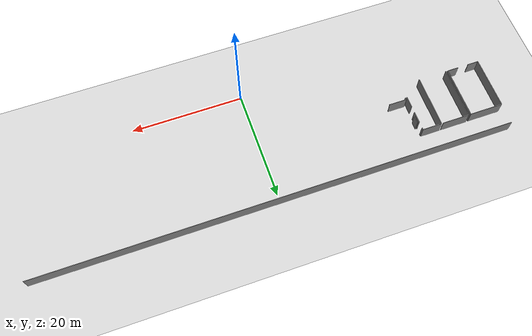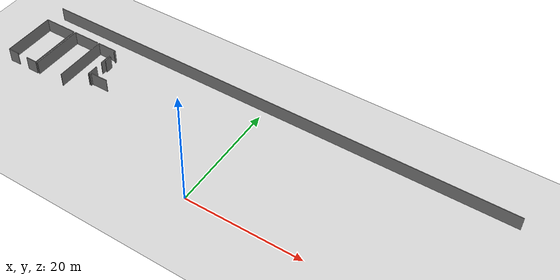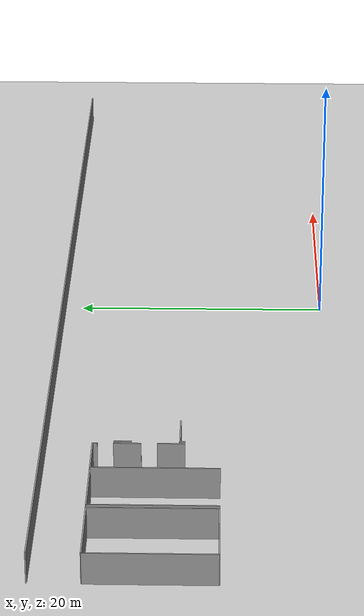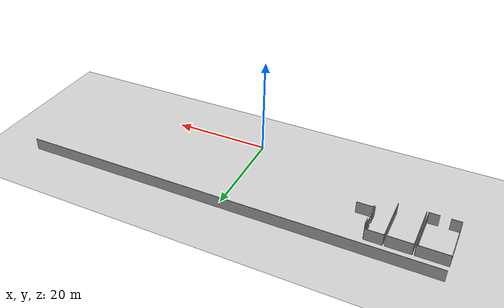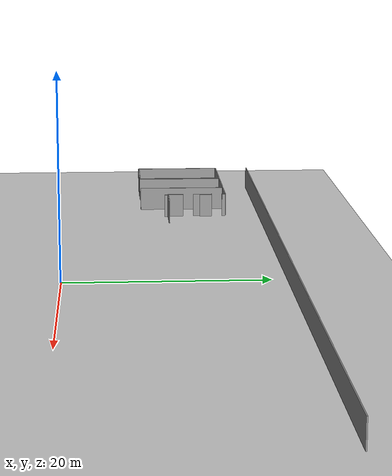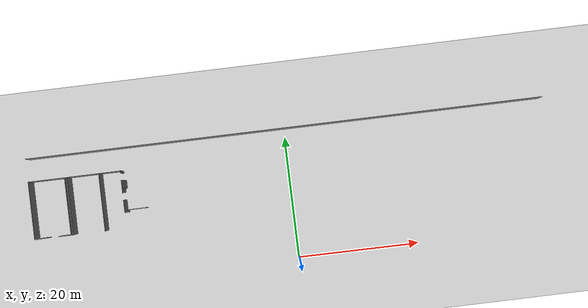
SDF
<sdf version="1.6">
 <world name="default">
  <model name="ground_plane">
   <static>1</static>
   <link name="link">
    <collision name="collision">
     <geometry><plane><normal>0 0 1</normal><size>100 100</size></plane></geometry>
     <surface><friction><ode><mu>100</mu><mu2>50</mu2></ode></friction></surface>
    </collision>
    <visual name="visual">
     <cast_shadows>0</cast_shadows>
     <geometry><plane><normal>0 0 1</normal><size>100 100</size></plane></geometry>
     <material>
      <script><uri>file://media/materials/scripts/gazebo.material</uri><name>Gazebo/Grey</name></script>
     </material>
    </visual>
   </link>
  </model>
  <model name="50052748">
   <static>1</static>
   <link name="Wall_35">
    <collision name="Wall_35_Collision">
     <geometry><box><size>9.44384485538 0.1 2.5</size></box></geometry>
     <pose>4.72192242769 0 1.25 0 0 0</pose>
    </collision>
    <visual name="Wall_35_Visual">
     <pose>4.72192242769 0 1.25 0 0 0</pose>
     <geometry><box><size>9.44384485538 0.1 2.5</size></box></geometry>
     <material>
      <script><uri>file://media/materials/scripts/gazebo.material</uri><name>Gazebo/Grey</name></script>
      <ambient>1 1 1 1</ambient>
     </material>
    </visual>
    <pose>0.0 -13.235460106 0 0 0 1.57079632679</pose>
   </link>
   <link name="Wall_36">
    <collision name="Wall_36_Collision">
     <geometry><box><size>5.98133424984 0.1 2.5</size></box></geometry>
     <pose>2.99066712492 0 1.25 0 0 0</pose>
    </collision>
    <visual name="Wall_36_Visual">
     <pose>2.99066712492 0 1.25 0 0 0</pose>
     <geometry><box><size>5.98133424984 0.1 2.5</size></box></geometry>
     <material>
      <script><uri>file://media/materials/scripts/gazebo.material</uri><name>Gazebo/Grey</name></script>
      <ambient>1 1 1 1</ambient>
     </material>
    </visual>
    <pose>0.0 -3.79161525067 0 0 0 0.0</pose>
   </link>
   <link name="Wall_37">
    <collision name="Wall_37_Collision">
     <geometry><box><size>9.42139725531 0.1 2.5</size></box></geometry>
     <pose>4.71069862765 0 1.25 0 0 0</pose>
    </collision>
    <visual name="Wall_37_Visual">
     <pose>4.71069862765 0 1.25 0 0 0</pose>
     <geometry><box><size>9.42139725531 0.1 2.5</size></box></geometry>
     <material>
      <script><uri>file://media/materials/scripts/gazebo.material</uri><name>Gazebo/Grey</name></script>
      <ambient>1 1 1 1</ambient>
     </material>
    </visual>
    <pose>5.98133424984 -3.79161525067 0 0 0 -1.57079632679</pose>
   </link>
   <link name="Wall_38">
    <collision name="Wall_38_Collision">
     <geometry><box><size>2.04057562241 0.1 2.5</size></box></geometry>
     <pose>1.02028781121 0 1.25 0 0 0</pose>
    </collision>
    <visual name="Wall_38_Visual">
     <pose>1.02028781121 0 1.25 0 0 0</pose>
     <geometry><box><size>2.04057562241 0.1 2.5</size></box></geometry>
     <material>
      <script><uri>file://media/materials/scripts/gazebo.material</uri><name>Gazebo/Grey</name></script>
      <ambient>1 1 1 1</ambient>
     </material>
    </visual>
    <pose>5.98133424984 -13.213012506 0 0 0 3.14159265359</pose>
   </link>
   <link name="Wall_39">
    <collision name="Wall_39_Collision">
     <geometry><box><size>1.97247279987 0.1 2.5</size></box></geometry>
     <pose>0.986236399936 0 1.25 0 0 0</pose>
    </collision>
    <visual name="Wall_39_Visual">
     <pose>0.986236399936 0 1.25 0 0 0</pose>
     <geometry><box><size>1.97247279987 0.1 2.5</size></box></geometry>
     <material>
      <script><uri>file://media/materials/scripts/gazebo.material</uri><name>Gazebo/Grey</name></script>
      <ambient>1 1 1 1</ambient>
     </material>
    </visual>
    <pose>1.972345064 -13.213012506 0 0 0 -3.13021197212</pose>
   </link>
   <link name="Wall_55">
    <collision name="Wall_55_Collision">
     <geometry><box><size>4.90790776953 0.1 2.5</size></box></geometry>
     <pose>2.45395388477 0 1.25 0 0 0</pose>
    </collision>
    <visual name="Wall_55_Visual">
     <pose>2.45395388477 0 1.25 0 0 0</pose>
     <geometry><box><size>4.90790776953 0.1 2.5</size></box></geometry>
     <material>
      <script><uri>file://media/materials/scripts/gazebo.material</uri><name>Gazebo/Grey</name></script>
      <ambient>1 1 1 1</ambient>
     </material>
    </visual>
    <pose>11.280236093 -3.78248402352 0 0 0 3.14159265359</pose>
   </link>
   <link name="Wall_56">
    <collision name="Wall_56_Collision">
     <geometry><box><size>9.46085503786 0.1 2.5</size></box></geometry>
     <pose>4.73042751893 0 1.25 0 0 0</pose>
    </collision>
    <visual name="Wall_56_Visual">
     <pose>4.73042751893 0 1.25 0 0 0</pose>
     <geometry><box><size>9.46085503786 0.1 2.5</size></box></geometry>
     <material>
      <script><uri>file://media/materials/scripts/gazebo.material</uri><name>Gazebo/Grey</name></script>
      <ambient>1 1 1 1</ambient>
     </material>
    </visual>
    <pose>6.37232832342 -3.78248402352 0 0 0 -1.57263281047</pose>
   </link>
   <link name="Wall_69">
    <collision name="Wall_69_Collision">
     <geometry><box><size>2.08077838639 0.1 2.5</size></box></geometry>
     <pose>1.04038919319 0 1.25 0 0 0</pose>
    </collision>
    <visual name="Wall_69_Visual">
     <pose>1.04038919319 0 1.25 0 0 0</pose>
     <geometry><box><size>2.08077838639 0.1 2.5</size></box></geometry>
     <material>
      <script><uri>file://media/materials/scripts/gazebo.material</uri><name>Gazebo/Grey</name></script>
      <ambient>1 1 1 1</ambient>
     </material>
    </visual>
    <pose>15.1327261913 -10.6329335462 0 0 0 1.57079632679</pose>
   </link>
   <link name="Wall_70">
    <collision name="Wall_70_Collision">
     <geometry><box><size>2.06796930386 0.1 2.5</size></box></geometry>
     <pose>1.03398465193 0 1.25 0 0 0</pose>
    </collision>
    <visual name="Wall_70_Visual">
     <pose>1.03398465193 0 1.25 0 0 0</pose>
     <geometry><box><size>2.06796930386 0.1 2.5</size></box></geometry>
     <material>
      <script><uri>file://media/materials/scripts/gazebo.material</uri><name>Gazebo/Grey</name></script>
      <ambient>1 1 1 1</ambient>
     </material>
    </visual>
    <pose>15.1327261913 -7.38487995607 0 0 0 1.57079632679</pose>
   </link>
   <link name="Wall_71">
    <collision name="Wall_71_Collision">
     <geometry><box><size>0.367405070114 0.1 2.5</size></box></geometry>
     <pose>0.183702535057 0 1.25 0 0 0</pose>
    </collision>
    <visual name="Wall_71_Visual">
     <pose>0.183702535057 0 1.25 0 0 0</pose>
     <geometry><box><size>0.367405070114 0.1 2.5</size></box></geometry>
     <material>
      <script><uri>file://media/materials/scripts/gazebo.material</uri><name>Gazebo/Grey</name></script>
      <ambient>1 1 1 1</ambient>
     </material>
    </visual>
    <pose>15.1327261913 -4.14506983486 0 0 0 1.57079632679</pose>
   </link>
   <link name="Wall_72">
    <collision name="Wall_72_Collision">
     <geometry><box><size>3.54253566569 0.1 2.5</size></box></geometry>
     <pose>1.77126783284 0 1.25 0 0 0</pose>
    </collision>
    <visual name="Wall_72_Visual">
     <pose>1.77126783284 0 1.25 0 0 0</pose>
     <geometry><box><size>3.54253566569 0.1 2.5</size></box></geometry>
     <material>
      <script><uri>file://media/materials/scripts/gazebo.material</uri><name>Gazebo/Grey</name></script>
      <ambient>1 1 1 1</ambient>
     </material>
    </visual>
    <pose>15.1327261913 -3.77766476475 0 0 0 3.14159265359</pose>
   </link>
   <link name="Wall_73">
    <collision name="Wall_73_Collision">
     <geometry><box><size>9.4708735444 0.1 2.5</size></box></geometry>
     <pose>4.7354367722 0 1.25 0 0 0</pose>
    </collision>
    <visual name="Wall_73_Visual">
     <pose>4.7354367722 0 1.25 0 0 0</pose>
     <geometry><box><size>9.4708735444 0.1 2.5</size></box></geometry>
     <material>
      <script><uri>file://media/materials/scripts/gazebo.material</uri><name>Gazebo/Grey</name></script>
      <ambient>1 1 1 1</ambient>
     </material>
    </visual>
    <pose>11.5901905256 -3.77766476475 0 0 0 -1.57260408615</pose>
   </link>
   <link name="Wall_204">
    <collision name="Wall_204_Collision">
     <geometry><box><size>1.34254403598 0.1 2.5</size></box></geometry>
     <pose>0.671272017989 0 1.25 0 0 0</pose>
    </collision>
    <visual name="Wall_204_Visual">
     <pose>0.671272017989 0 1.25 0 0 0</pose>
     <geometry><box><size>1.34254403598 0.1 2.5</size></box></geometry>
     <material>
      <script><uri>file://media/materials/scripts/gazebo.material</uri><name>Gazebo/Grey</name></script>
      <ambient>1 1 1 1</ambient>
     </material>
    </visual>
    <pose>15.4329152838 -6.67606844869 0 0 0 1.57079632679</pose>
   </link>
   <link name="Wall_215">
    <collision name="Wall_215_Collision">
     <geometry><box><size>0.391628186576 0.1 2.5</size></box></geometry>
     <pose>0.195814093288 0 1.25 0 0 0</pose>
    </collision>
    <visual name="Wall_215_Visual">
     <pose>0.195814093288 0 1.25 0 0 0</pose>
     <geometry><box><size>0.391628186576 0.1 2.5</size></box></geometry>
     <material>
      <script><uri>file://media/materials/scripts/gazebo.material</uri><name>Gazebo/Grey</name></script>
      <ambient>1 1 1 1</ambient>
     </material>
    </visual>
    <pose>15.4301251866 -10.6322994332 0 0 0 1.57079632679</pose>
   </link>
   <link name="Wall_216">
    <collision name="Wall_216_Collision">
     <geometry><box><size>3.18350088712 0.1 2.5</size></box></geometry>
     <pose>1.59175044356 0 1.25 0 0 0</pose>
    </collision>
    <visual name="Wall_216_Visual">
     <pose>1.59175044356 0 1.25 0 0 0</pose>
     <geometry><box><size>3.18350088712 0.1 2.5</size></box></geometry>
     <material>
      <script><uri>file://media/materials/scripts/gazebo.material</uri><name>Gazebo/Grey</name></script>
      <ambient>1 1 1 1</ambient>
     </material>
    </visual>
    <pose>15.4301251866 -10.2406712467 0 0 0 0.0</pose>
   </link>
   <link name="Wall_253">
    <collision name="Wall_253_Collision">
     <geometry><box><size>85.1853448877 0.1 2.5</size></box></geometry>
     <pose>42.5926724439 0 1.25 0 0 0</pose>
    </collision>
    <visual name="Wall_253_Visual">
     <pose>42.5926724439 0 1.25 0 0 0</pose>
     <geometry><box><size>85.1853448877 0.1 2.5</size></box></geometry>
     <material>
      <script><uri>file://media/materials/scripts/gazebo.material</uri><name>Gazebo/Grey</name></script>
      <ambient>1 1 1 1</ambient>
     </material>
    </visual>
   </link>
   <pose>-42.55 21.5022460282 0 0 0 0</pose>
  </model>
 </world>
</sdf>
